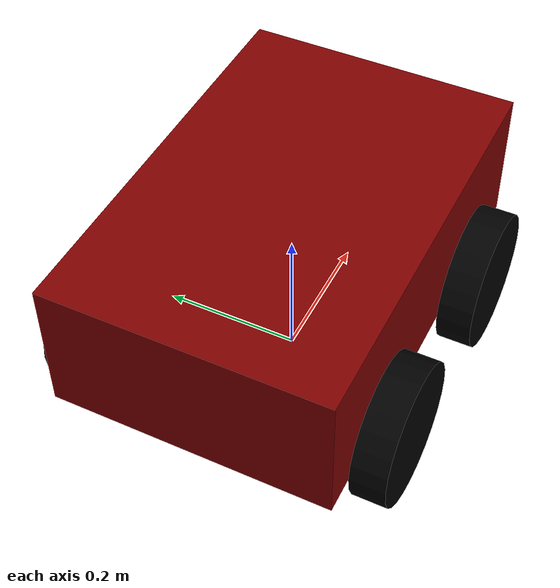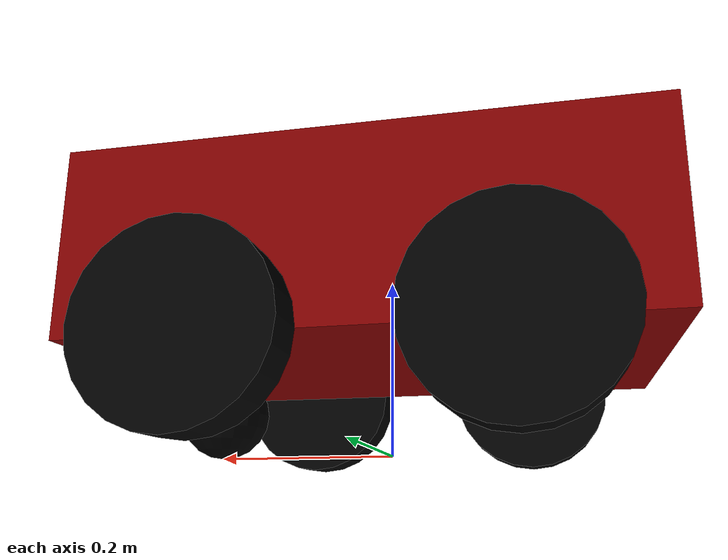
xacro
<?xml version="1.0"?>
<robot name="my_mobile" xmlns:xacro="http://www.ros.org/wiki/xacro">
    <xacro:property name="base_length" value="0.6" />
    <xacro:property name="base_width" value="0.4" />
    <xacro:property name="base_height" value="0.2" />
    <xacro:property name="wheel_radius" value="0.1" />
    <xacro:property name="wheel_length" value="0.05" />

    <link name="base_footprint" />

    <!-- Base Link -->
    <link name="base_link">
        <visual>
            <geometry>
                <box size="${base_length} ${base_width} ${base_height}" />
            </geometry>
            <origin xyz="0 0 ${base_height / 2.0}" rpy="0 0 0" />
            <material name="maroon">
                <color rgba="0.5 0 0 1"/>
            </material>
        </visual>
        <collision>
            <geometry>
                <box size="${base_length} ${base_width} ${base_height}" />
            </geometry>
            <origin xyz="0 0 ${base_height / 2.0}" rpy="0 0 0" />
        </collision>

        <xacro:box_inertia m="5.0" l="${2*base_length}" w="${2*base_width}" h="${2*base_height}"
                           xyz="0 0 ${base_height / 2.0}" rpy="0 0 0" />
    </link>

    <!-- Wheel Macro -->
    <xacro:macro name="wheel_link" params="prefix color">
        <link name="${prefix}_wheel_link">
            <visual>
                <geometry>
                    <cylinder radius="${wheel_radius}" length="${wheel_length}" />
                </geometry>
                <origin xyz="0 0 0" rpy="${pi / 2.0} 0 0" />
                <material name="${prefix}_color">
                    <color rgba="${color}"/>
                </material>
            </visual>
            <collision>
                <geometry>
                    <cylinder radius="${wheel_radius}" length="${wheel_length}" />
                </geometry>
                <origin xyz="0 0 0" rpy="${pi / 2.0} 0 0" />
            </collision>
            <xacro:cylinder_inertia m="1.0" r="${2*wheel_radius}" h="${2*wheel_length}"
                                    xyz="0 0 0" rpy="${pi / 2.0} 0 0" />
        </link>
    </xacro:macro>

    <!-- Right & Left Wheels with Different Colors -->
    <xacro:wheel_link prefix="right" color="0 0 0 1"/>  <!-- Blue -->
    <xacro:wheel_link prefix="left" color="0 0 0 1"/>   <!-- Green -->
    <xacro:wheel_link prefix="front_right" color="0 0 0 1"/>  <!-- Red -->
    <xacro:wheel_link prefix="front_left" color="0 0 0 1"/>   <!-- Yellow -->

    <!-- Caster Wheel -->
    <link name="caster_wheel_link">
        <visual>
            <geometry>
                <sphere radius="${wheel_radius / 2.0}" />
            </geometry>
            <origin xyz="0 0 0" rpy="0 0 0" />
            <material name="black">
                <color rgba="0 0 0 1"/>
            </material>
        </visual>
        <collision>
            <geometry>
                <sphere radius="${wheel_radius / 2.0}" />
            </geometry>
            <origin xyz="0 0 0" rpy="0 0 0" />
        </collision>

        <xacro:sphere_inertia m="0.5" r="${2*wheel_radius / 2.0}"
                              xyz="0 0 0" rpy="0 0 0" />
    </link>

    <!-- Joints -->
    <joint name="base_joint" type="fixed">
        <parent link="base_footprint" />
        <child link="base_link" />
        <origin xyz="0 0 ${wheel_radius}" rpy="0 0 0"/>
    </joint>

    <joint name="base_right_wheel_joint" type="continuous">
        <parent link="base_link" />
        <child link="right_wheel_link" />
        <origin xyz="${-base_length / 4.0} ${-(base_width + wheel_length) / 2.0} 0" rpy="0 0 0" />
        <axis xyz="0 1 0" />
    </joint>

    <joint name="base_left_wheel_joint" type="continuous">
        <parent link="base_link" />
        <child link="left_wheel_link" />
        <origin xyz="${-base_length / 4.0} ${(base_width + wheel_length) / 2.0} 0" rpy="0 0 0" />
        <axis xyz="0 1 0" />
    </joint>

    <joint name="base_caster_wheel_joint" type="fixed">
        <parent link="base_link" />
        <child link="caster_wheel_link" />
        <origin xyz="${base_length / 3.0} 0 ${-wheel_radius / 2.0}" rpy="0 0 0" />
    </joint>

    <!-- Front Right Wheel Joint -->
    <joint name="base_to_front_right_wheel_joint" type="continuous">
        <parent link="base_link"/>
        <child link="front_right_wheel_link"/>
        <origin xyz="0.15 -${(base_width/2) + (wheel_length/2)} 0" rpy="0 0 0"/>
        <axis xyz="0 1 0"/>
    </joint>

    <!-- Front Left Wheel Joint -->
    <joint name="base_to_front_left_wheel_joint" type="continuous">
        <parent link="base_link"/>
        <child link="front_left_wheel_link"/>
        <origin xyz="0.15 ${(base_width/2) + (wheel_length/2)} 0" rpy="0 0 0"/>
        <axis xyz="0 1 0"/>
</joint>

</robot>
